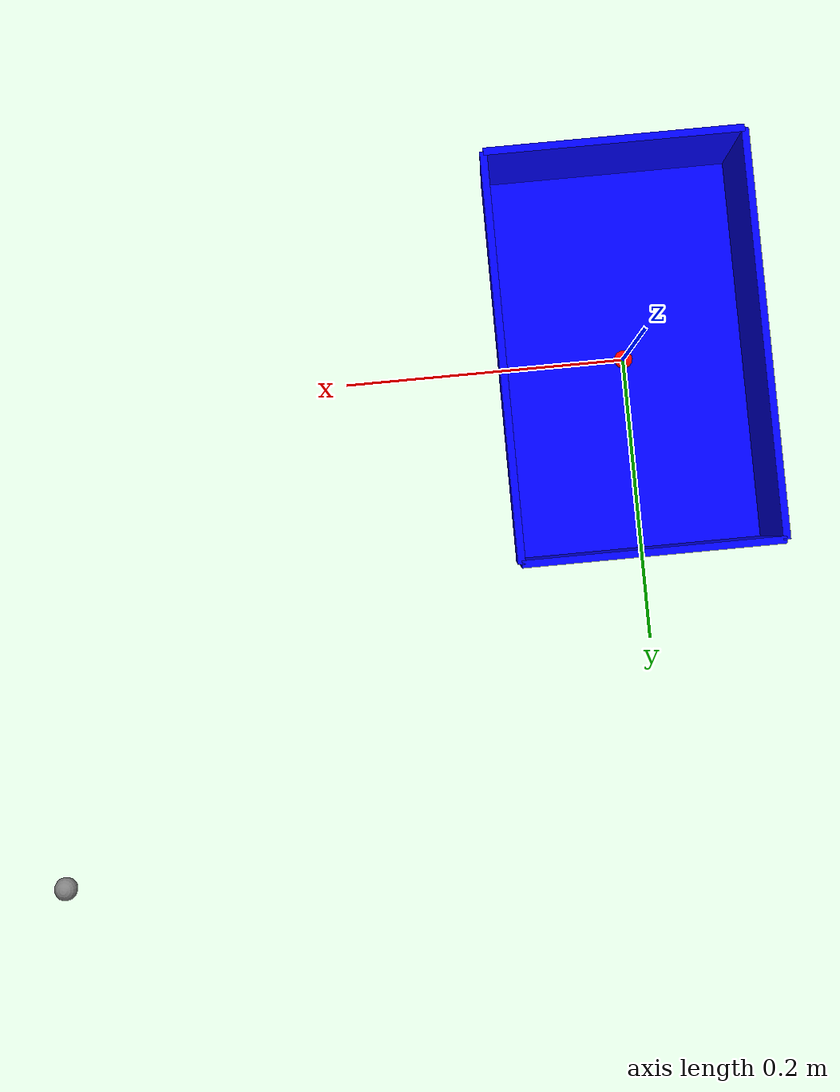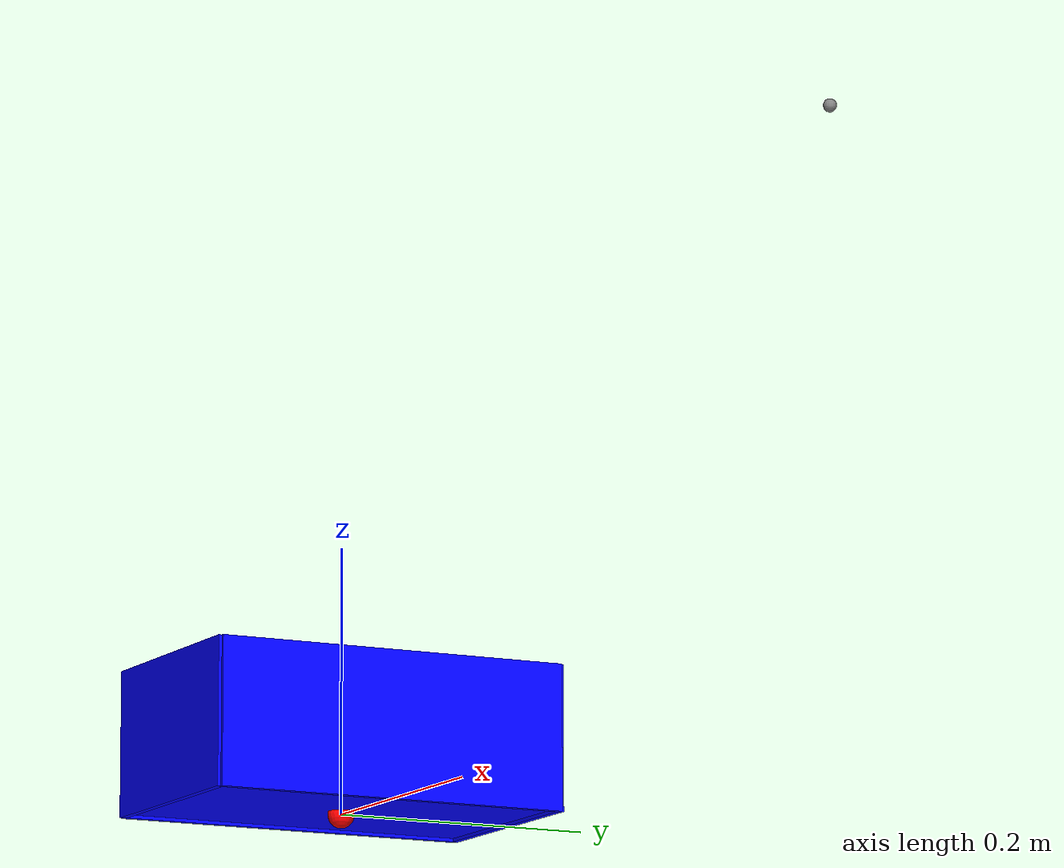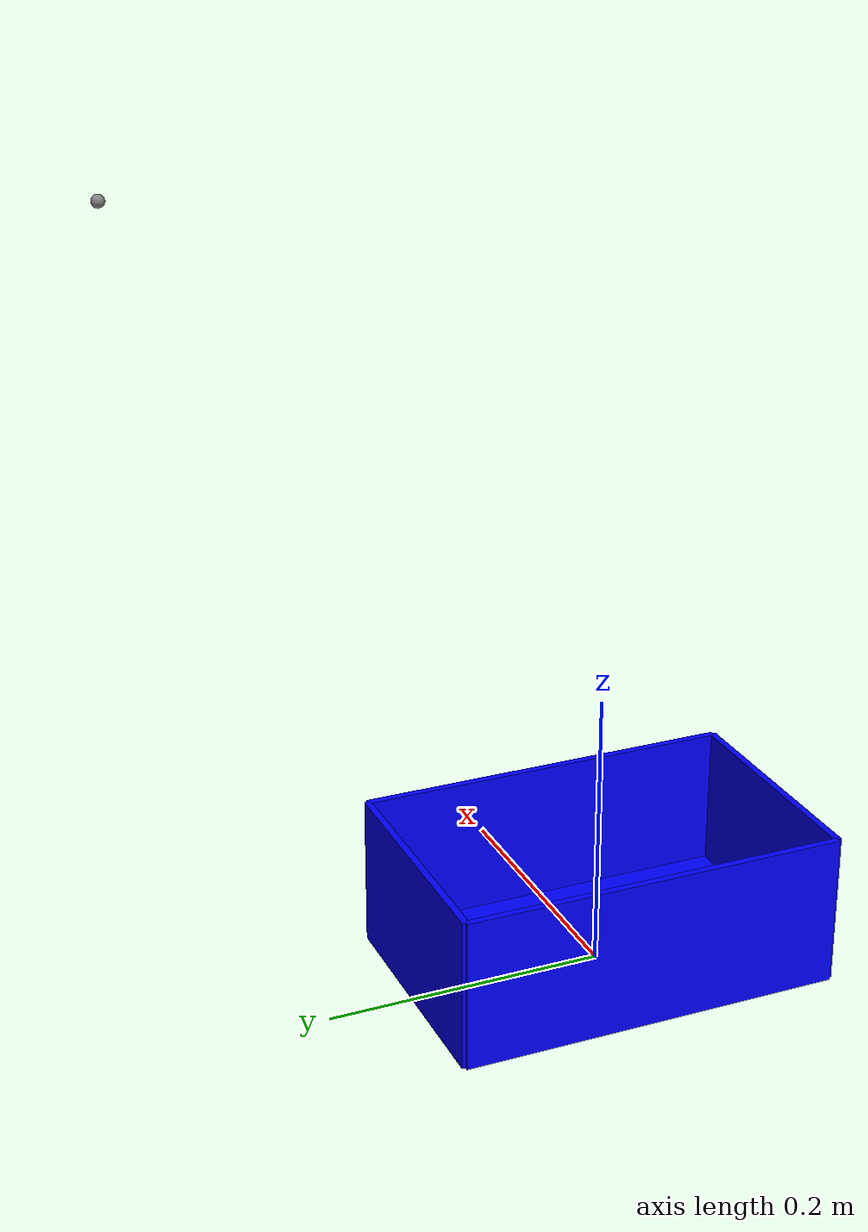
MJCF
<mujoco model="box_blue_large">
    <compiler angle="radian" meshdir="environment_parts/" />
    <asset>
        <!-- Add a blue material with plastic-like properties -->
        <material name="blue_plastic" rgba="0 0 1 1" shininess="0.8" specular="1"/>
    </asset>
    <worldbody>
        <!-- Uncomment and adjust the light if needed -->
        <body name="Kiste" pos="0 0 0">
            <site name="gripping_point" pos="0.3 0.25 0.5" quat="0 -1 0 0"/>
            <site name="grasp_pop" pos="0 0 0" size="0.01" rgba="1 0 0 1" group="0"/>
            <!-- Adjust the geometries to reflect the dimensions and apply the blue plastic material -->
            <geom pos="0 0 0.005" size="0.0875 0.1375 0.0025" type="box" condim="3" name="Kiste_bottom" material="blue_plastic"/>
            <geom pos="0.0875 0 0.055" size="0.0025 0.1375 0.055" type="box" condim="3" name="Kiste_wall1" material="blue_plastic"/>
            <geom pos="-0.0875 0 0.055" size="0.0025 0.1375 0.055" type="box" condim="3" name="Kiste_wall2" material="blue_plastic"/>
            <geom pos="0 0.1375 0.055" size="0.0875 0.0025 0.055" type="box" condim="3" name="Kiste_wall3" material="blue_plastic"/>
            <geom pos="0 -0.1375 0.055" size="0.0875 0.0025 0.055" type="box" condim="3" name="Kiste_wall4" material="blue_plastic"/>
        </body>
    </worldbody>
</mujoco>
